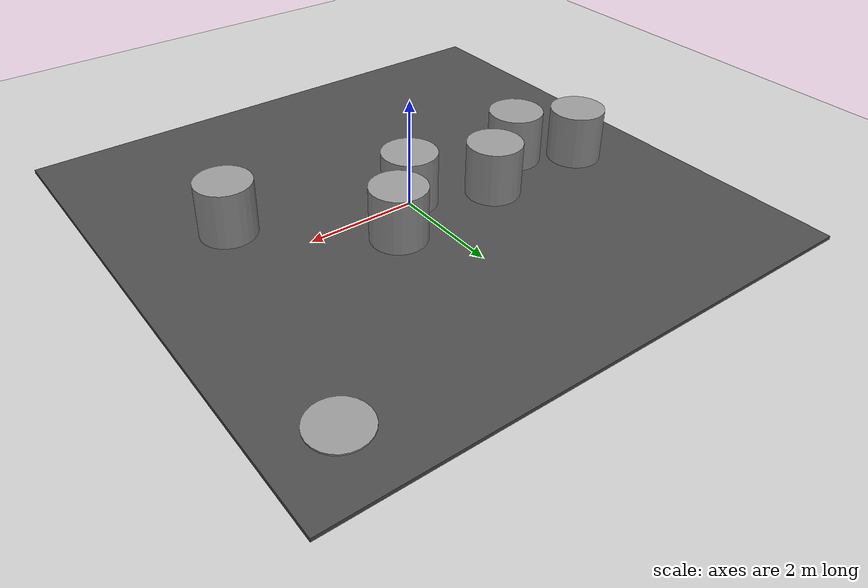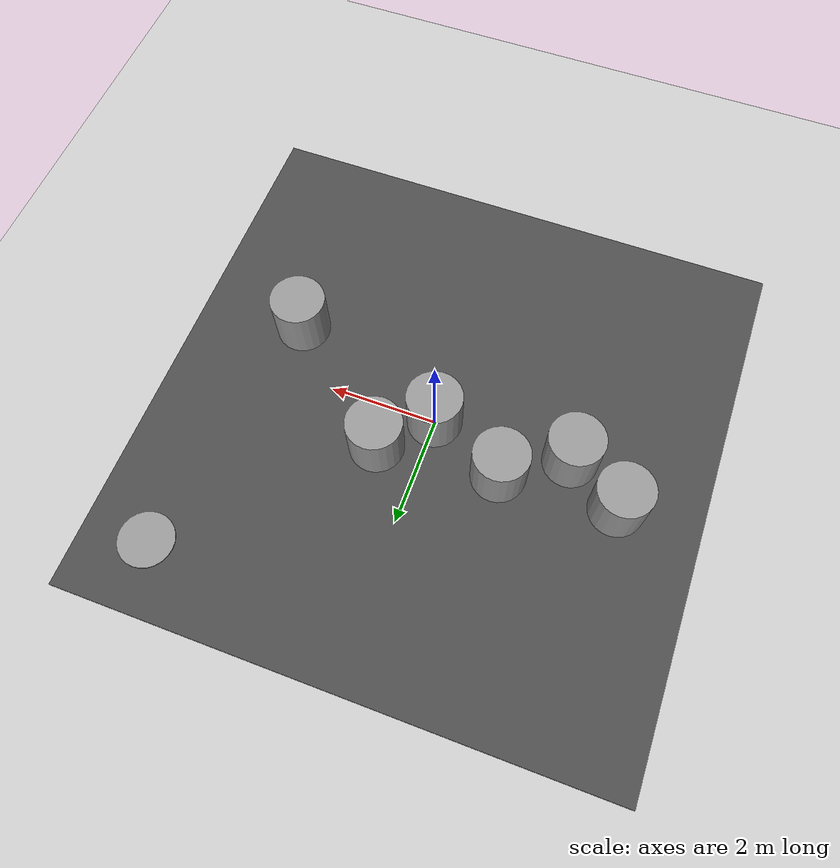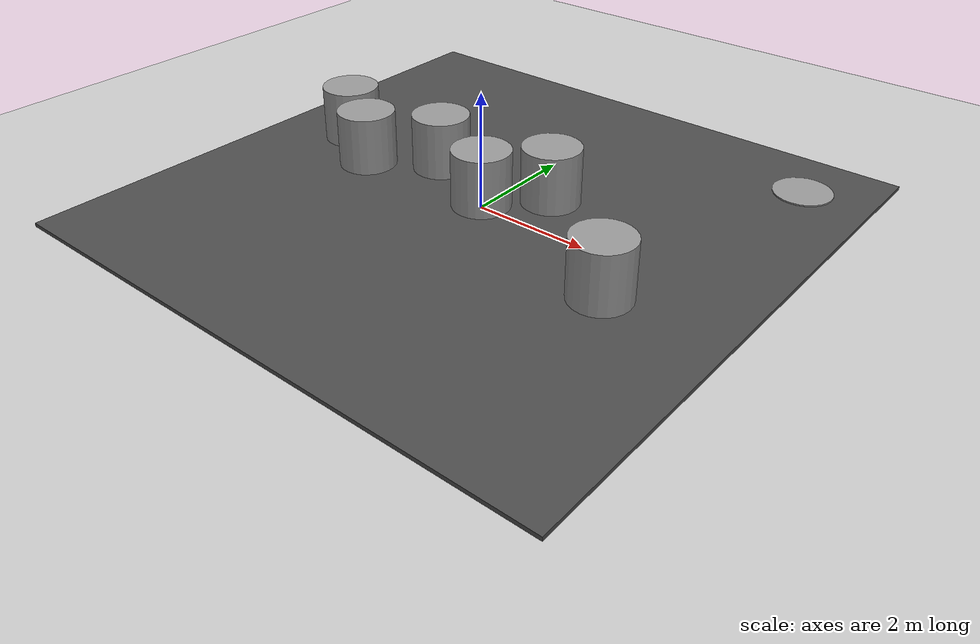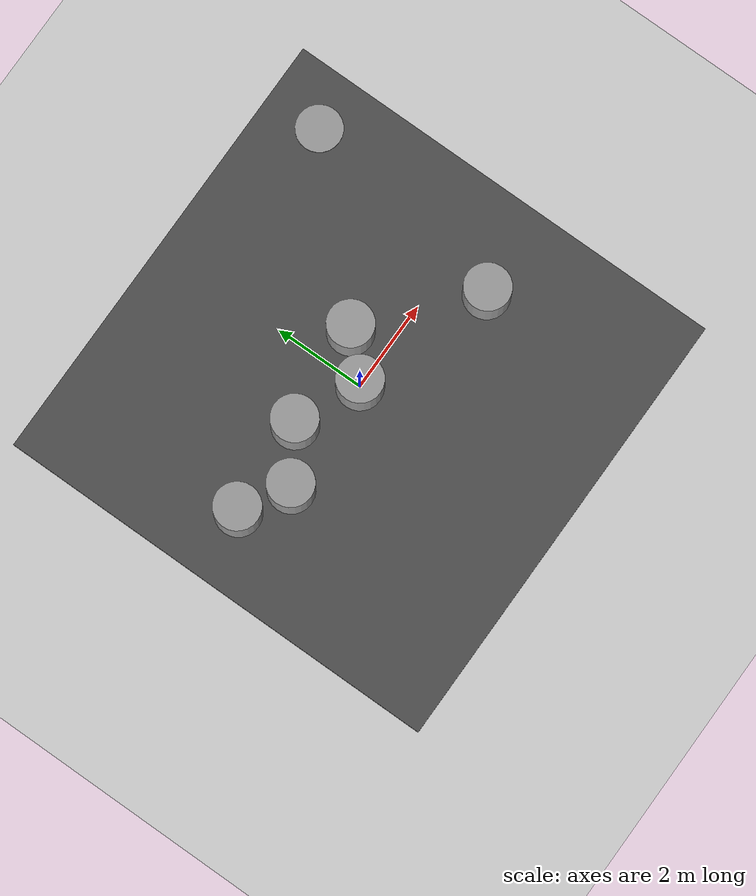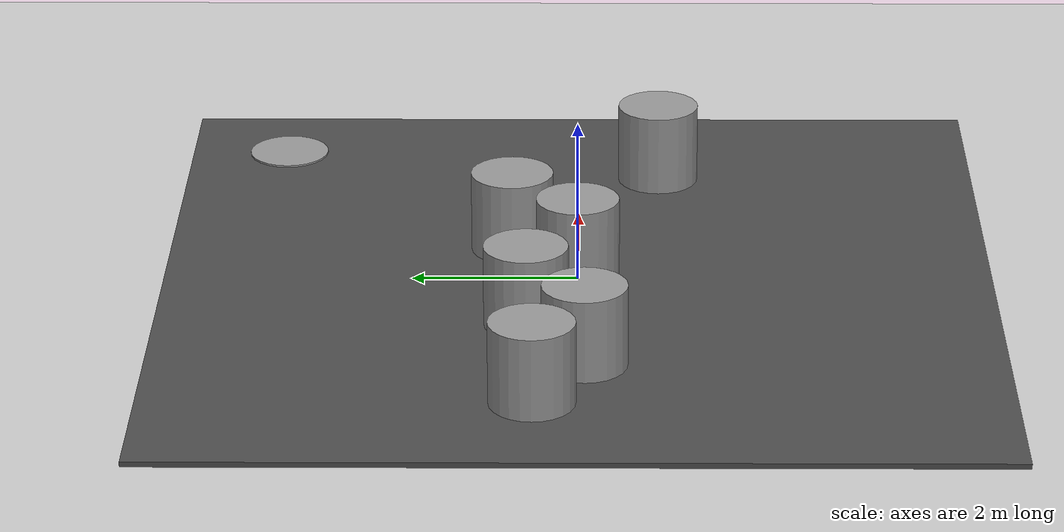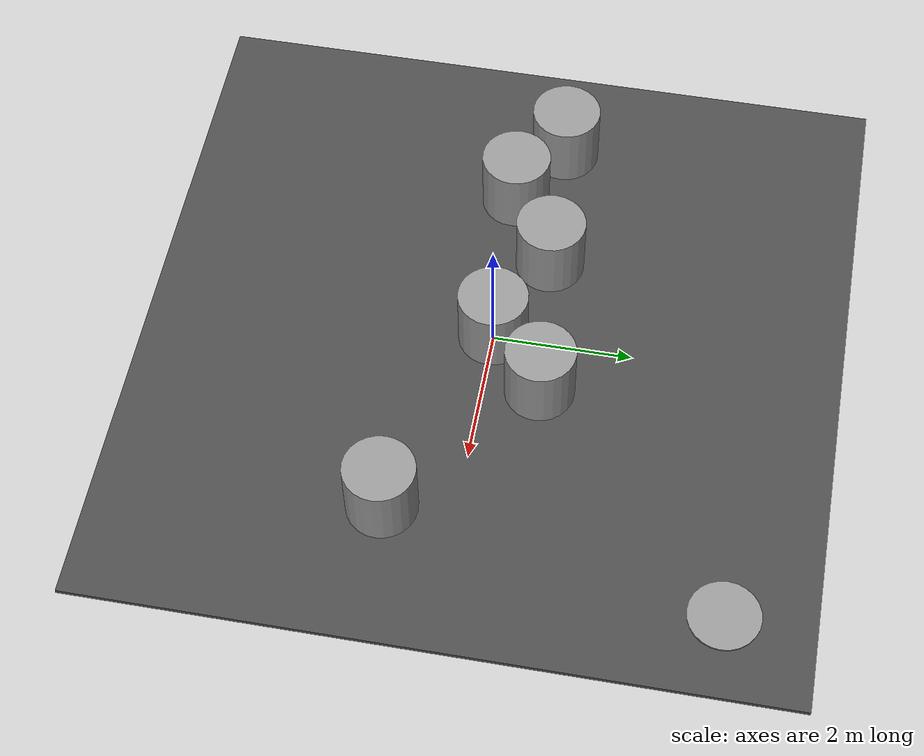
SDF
<sdf version="1.7">
 <world name="default">
  <light name="sun" type="directional">
   <pose>0 0 10 0 -0 0</pose>
   <diffuse>0.8 0.8 0.8 1</diffuse>
   <specular>0.2 0.2 0.2 1</specular>
   <attenuation>
    <range>1000</range>
    <constant>0.9</constant>
    <linear>0.01</linear>
    <quadratic>0.001</quadratic>
   </attenuation>
   <direction>-0.5 0.1 -0.9</direction>
   <spot><inner_angle>0</inner_angle><outer_angle>0</outer_angle><falloff>0</falloff></spot>
  </light>
  <model name="ground_plane">
   <static>1</static>
   <link name="link">
    <collision name="collision">
     <geometry><plane><normal>0 0 1</normal><size>100 100</size></plane></geometry>
     <surface><friction><ode><mu>100</mu><mu2>50</mu2></ode></friction></surface>
    </collision>
    <visual name="visual">
     <cast_shadows>0</cast_shadows>
     <geometry><plane><normal>0 0 1</normal><size>100 100</size></plane></geometry>
     <material>
      <script><uri>file://media/materials/scripts/gazebo.material</uri><name>Gazebo/Grey</name></script>
     </material>
    </visual>
    <velocity_decay><linear>0</linear><angular>0</angular></velocity_decay>
   </link>
  </model>
  <physics type="ode">
   <max_step_size>0.01</max_step_size>
   <real_time_factor>1</real_time_factor>
   <real_time_update_rate>100</real_time_update_rate>
  </physics>
  <scene><ambient>0.4 0.4 0.4 1</ambient><background>0.7 0.7 0.7 1</background><shadows>1</shadows></scene>
  <model name="asphalt_plane">
   <static>1</static>
   <link name="link">
    <collision name="collision"><geometry><box><size>10.0033 9.97431 0.1</size></box></geometry></collision>
    <visual name="visual">
     <cast_shadows>0</cast_shadows>
     <geometry><box><size>10.0033 9.97431 0.1</size></box></geometry>
     <material>
      <script>
       <uri>model://asphalt_plane/materials/scripts</uri>
       <uri>model://asphalt_plane/materials/textures</uri>
       <name>vrc/asphalt</name>
      </script>
     </material>
    </visual>
    <velocity_decay><linear>0</linear><angular>0</angular></velocity_decay>
   </link>
  </model>
  <gravity>0 0 -9.8</gravity>
  <magnetic_field>6e-06 2.3e-05 -4.2e-05</magnetic_field>
  <atmosphere type="adiabatic"/>
  <spherical_coordinates>
   <surface_model>EARTH_WGS84</surface_model>
   <latitude_deg>0</latitude_deg>
   <longitude_deg>0</longitude_deg>
   <elevation>0</elevation>
   <heading_deg>0</heading_deg>
  </spherical_coordinates>
  <model name="target">
   <link name="link">
    <inertial>
     <mass>1</mass>
     <inertia><ixx>0.145833</ixx><ixy>0</ixy><ixz>0</ixz><iyy>0.145833</iyy><iyz>0</iyz><izz>0.125</izz></inertia>
    </inertial>
    <visual name="visual">
     <geometry><cylinder><radius>0.5</radius><length>0.0238306</length></cylinder></geometry>
     <material>
      <script><name>Gazebo/Grey</name><uri>file://media/materials/scripts/gazebo.material</uri></script>
      <shader type="pixel"/>
     </material>
    </visual>
    <collision name="collision">
     <geometry><cylinder><radius>0.5</radius><length>0.023831</length></cylinder></geometry>
     <surface>
      <friction>
       <ode><mu>1</mu><mu2>1</mu2><fdir1>0 0 0</fdir1><slip1>0</slip1><slip2>0</slip2></ode>
       <torsional>
        <coefficient>1</coefficient>
        <patch_radius>0</patch_radius>
        <surface_radius>0</surface_radius>
        <use_patch_radius>1</use_patch_radius>
        <ode><slip>0</slip></ode>
       </torsional>
      </friction>
      <bounce><restitution_coefficient>0</restitution_coefficient><threshold>1e+06</threshold></bounce>
      <contact>
       <collide_without_contact>0</collide_without_contact>
       <collide_without_contact_bitmask>1</collide_without_contact_bitmask>
       <collide_bitmask>1</collide_bitmask>
       <ode>
        <soft_cfm>0</soft_cfm>
        <soft_erp>0.2</soft_erp>
        <kp>1e+13</kp>
        <kd>1</kd>
        <max_vel>0.01</max_vel>
        <min_depth>0</min_depth>
       </ode>
       <bullet>
        <split_impulse>1</split_impulse>
        <split_impulse_penetration_threshold>-0.01</split_impulse_penetration_threshold>
        <soft_cfm>0</soft_cfm>
        <soft_erp>0.2</soft_erp>
        <kp>1e+13</kp>
        <kd>1</kd>
       </bullet>
      </contact>
     </surface>
    </collision>
   </link>
   <static>1</static>
   <pose>3.84024 3.75157 0.061711 -0.000137 -0.000386 0.000976</pose>
  </model>
  <model name="unit_cylinder">
   <pose>0.001968 0.001968 0.54975 0.00068 0.001061 0.003684</pose>
   <link name="link">
    <inertial>
     <mass>1</mass>
     <inertia><ixx>0.145833</ixx><ixy>0</ixy><ixz>0</ixz><iyy>0.145833</iyy><iyz>0</iyz><izz>0.125</izz></inertia>
    </inertial>
    <collision name="collision">
     <geometry><cylinder><radius>0.5</radius><length>1</length></cylinder></geometry>
    </collision>
    <visual name="visual">
     <geometry><cylinder><radius>0.5</radius><length>1</length></cylinder></geometry>
     <material>
      <script><name>Gazebo/Grey</name><uri>file://media/materials/scripts/gazebo.material</uri></script>
     </material>
    </visual>
   </link>
  </model>
  <model name="unit_cylinder_clone">
   <pose>0.802852 0.803272 0.549759 0.000446 0.000181 0.008634</pose>
   <link name="link">
    <inertial>
     <mass>1</mass>
     <inertia><ixx>0.145833</ixx><ixy>0</ixy><ixz>0</ixz><iyy>0.145833</iyy><iyz>0</iyz><izz>0.125</izz></inertia>
    </inertial>
    <collision name="collision">
     <geometry><cylinder><radius>0.5</radius><length>1</length></cylinder></geometry>
    </collision>
    <visual name="visual">
     <geometry><cylinder><radius>0.5</radius><length>1</length></cylinder></geometry>
     <material>
      <script><name>Gazebo/Grey</name><uri>file://media/materials/scripts/gazebo.material</uri></script>
     </material>
    </visual>
   </link>
  </model>
  <model name="unit_cylinder_clone_clone">
   <pose>3.00052 -0.999114 0.55025 0.000465 0.000183 0.008031</pose>
   <link name="link">
    <inertial>
     <mass>1</mass>
     <inertia><ixx>0.145833</ixx><ixy>0</ixy><ixz>0</ixz><iyy>0.145833</iyy><iyz>0</iyz><izz>0.125</izz></inertia>
    </inertial>
    <collision name="collision">
     <geometry><cylinder><radius>0.5</radius><length>1</length></cylinder></geometry>
    </collision>
    <visual name="visual">
     <geometry><cylinder><radius>0.5</radius><length>1</length></cylinder></geometry>
     <material>
      <script><name>Gazebo/Grey</name><uri>file://media/materials/scripts/gazebo.material</uri></script>
     </material>
    </visual>
   </link>
  </model>
  <model name="unit_cylinder_clone_0">
   <pose>-1.39949 0.60104 0.549885 -0.000214 -8.6e-05 0.008707</pose>
   <link name="link">
    <inertial>
     <mass>1</mass>
     <inertia><ixx>0.145833</ixx><ixy>0</ixy><ixz>0</ixz><iyy>0.145833</iyy><iyz>0</iyz><izz>0.125</izz></inertia>
    </inertial>
    <collision name="collision">
     <geometry><cylinder><radius>0.5</radius><length>1</length></cylinder></geometry>
    </collision>
    <visual name="visual">
     <geometry><cylinder><radius>0.5</radius><length>1</length></cylinder></geometry>
     <material>
      <script><name>Gazebo/Grey</name><uri>file://media/materials/scripts/gazebo.material</uri></script>
     </material>
    </visual>
   </link>
  </model>
  <model name="unit_cylinder_clone_0_clone">
   <pose>-2.50307 -0.091031 0.550262 -0.000416 -0.00032 0.009673</pose>
   <link name="link">
    <inertial>
     <mass>1</mass>
     <inertia><ixx>0.145833</ixx><ixy>0</ixy><ixz>0</ixz><iyy>0.145833</iyy><iyz>0</iyz><izz>0.125</izz></inertia>
    </inertial>
    <collision name="collision">
     <geometry><cylinder><radius>0.5</radius><length>1</length></cylinder></geometry>
    </collision>
    <visual name="visual">
     <geometry><cylinder><radius>0.5</radius><length>1</length></cylinder></geometry>
     <material>
      <script><name>Gazebo/Grey</name><uri>file://media/materials/scripts/gazebo.material</uri></script>
     </material>
    </visual>
   </link>
  </model>
  <model name="unit_cylinder_clone_0_clone_clone">
   <pose>-3.49986 0.499727 0.550123 0.000228 9.3e-05 0.00654</pose>
   <link name="link">
    <inertial>
     <mass>1</mass>
     <inertia><ixx>0.145833</ixx><ixy>0</ixy><ixz>0</ixz><iyy>0.145833</iyy><iyz>0</iyz><izz>0.125</izz></inertia>
    </inertial>
    <collision name="collision">
     <geometry><cylinder><radius>0.5</radius><length>1</length></cylinder></geometry>
    </collision>
    <visual name="visual">
     <geometry><cylinder><radius>0.5</radius><length>1</length></cylinder></geometry>
     <material>
      <script><name>Gazebo/Grey</name><uri>file://media/materials/scripts/gazebo.material</uri></script>
     </material>
    </visual>
   </link>
  </model>
 </world>
</sdf>
